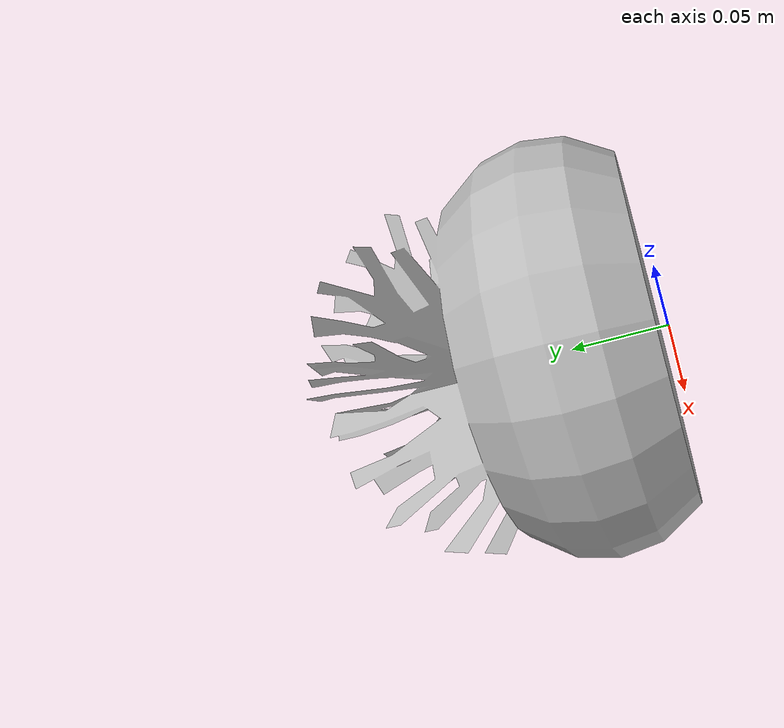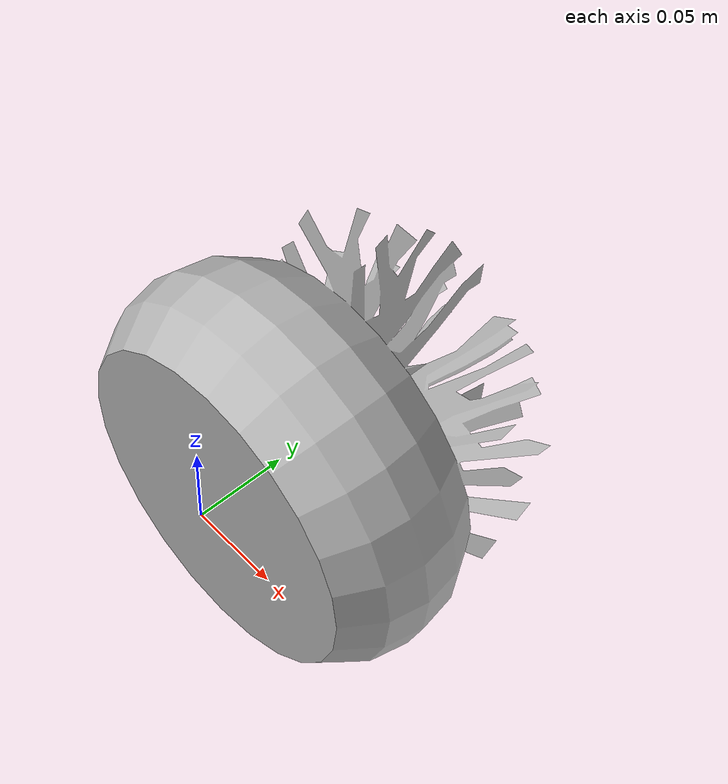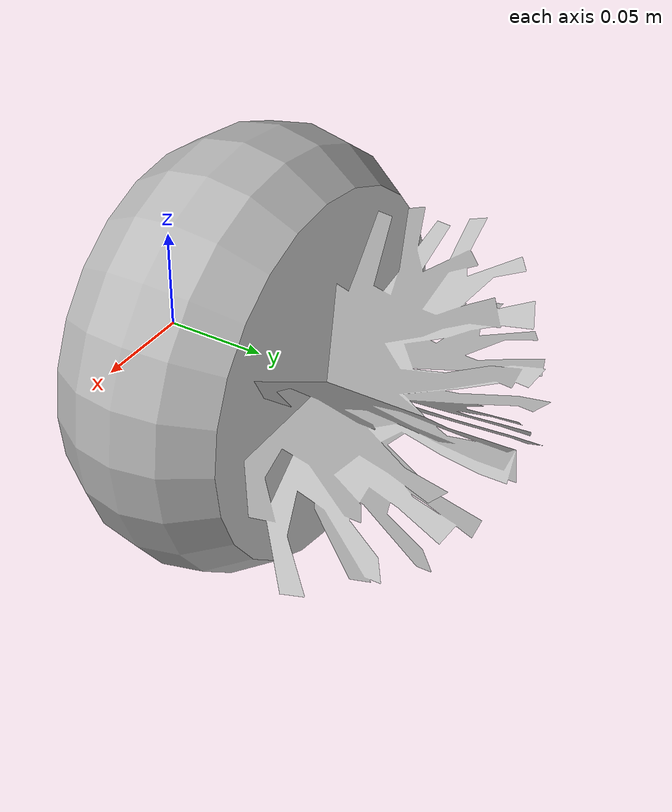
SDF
<?xml version="1.0" ?>
<sdf version="1.4">
  <model name="shelf1_plant1">
    <link name="body">
      <pose>0 0 0 0 0 0</pose>
      <inertial>
        <pose>   0.003880   0.065978   0.004130 0 0 0</pose>
        <mass>0.5</mass>
        <inertia>
          <ixx>0.01</ixx>
          <ixy>0</ixy>
          <ixz>0</ixz>
          <iyy>0.01</iyy>
          <iyz>0</iyz>
          <izz>0.01</izz>
        </inertia>
      </inertial>
      <collision name="collision">
        <geometry>
          <mesh>
            <uri>model://bookshelf/shelf1_items/plant1/plant1.dae</uri>
          </mesh>
        </geometry>
      </collision>
      <visual name="visual">
        <geometry>
          <mesh>
            <uri>model://bookshelf/shelf1_items/plant1/plant1.dae</uri>
          </mesh>
        </geometry>
      </visual>
    </link>
  </model>
</sdf>
